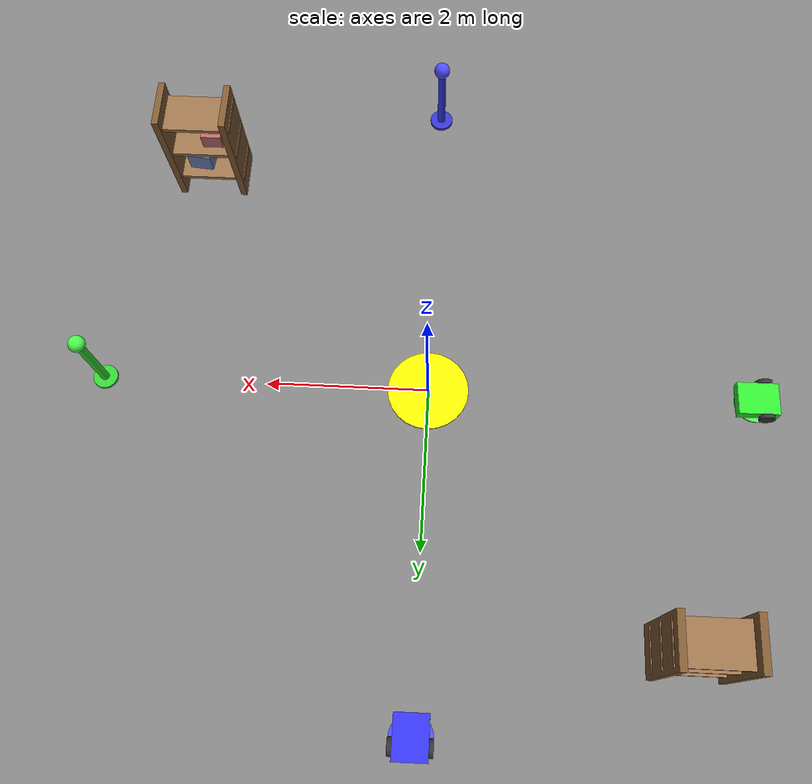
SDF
<?xml version="1.0" ?>
<sdf version="1.8">
  <world name="warehouse_world">

    <!-- PHYSICS CONFIGURATION                                              -->
    <physics name="1ms" type="ignored">
      <max_step_size>0.001</max_step_size>
      <real_time_factor>1.0</real_time_factor>
    </physics>

    <!-- Required Gazebo Plugins -->
    <plugin filename="gz-sim-physics-system" name="gz::sim::systems::Physics"/>
    <plugin filename="gz-sim-scene-broadcaster-system" name="gz::sim::systems::SceneBroadcaster"/>
    <plugin filename="gz-sim-user-commands-system" name="gz::sim::systems::UserCommands"/>

    <!-- LIGHTING                                                           -->
    <light type="directional" name="warehouse_light">
      <cast_shadows>true</cast_shadows>
      <pose>0 0 15 0 0 0</pose>
      <diffuse>0.9 0.9 0.9 1</diffuse>
      <specular>0.3 0.3 0.3 1</specular>
      <attenuation>
        <range>100</range>
        <constant>0.9</constant>
        <linear>0.01</linear>
        <quadratic>0.001</quadratic>
      </attenuation>
      <direction>-0.3 0.2 -0.9</direction>
    </light>

    <light type="directional" name="fill_light">
      <cast_shadows>false</cast_shadows>
      <pose>0 0 10 0 0 0</pose>
      <diffuse>0.4 0.4 0.5 1</diffuse>
      <specular>0.1 0.1 0.1 1</specular>
      <direction>0.5 -0.3 -0.8</direction>
    </light>

    <!-- WAREHOUSE FLOOR                                                    -->
    <model name="warehouse_floor">
      <static>true</static>
      <link name="link">
        <collision name="collision">
          <geometry>
            <plane>
              <normal>0 0 1</normal>
              <size>20 20</size>
            </plane>
          </geometry>
        </collision>
        <visual name="visual">
          <geometry>
            <plane>
              <normal>0 0 1</normal>
              <size>20 20</size>
            </plane>
          </geometry>
          <material>
            <ambient>0.4 0.4 0.4 1</ambient>
            <diffuse>0.5 0.5 0.5 1</diffuse>
            <specular>0.1 0.1 0.1 1</specular>
          </material>
        </visual>
      </link>
    </model>

    <!-- INTERSECTION MARKER (Yellow X at origin)                           -->
    <!-- This marks where the paths cross - the "danger zone" -->

    <model name="intersection_marker">
      <static>true</static>
      <pose>0 0 0.01 0 0 0</pose>
      <link name="link">
        <visual name="circle">
          <geometry>
            <cylinder>
              <radius>0.5</radius>
              <length>0.02</length>
            </cylinder>
          </geometry>
          <material>
            <ambient>0.8 0.8 0.0 1</ambient>
            <diffuse>1.0 1.0 0.0 1</diffuse>
          </material>
        </visual>
      </link>
    </model>

    <!-- STORAGE RACK 1 (Upper Left - out of the way)                       -->
    <model name="storage_rack_1">
      <static>true</static>
      <pose>-3 3 0 0 0 0</pose>

      <link name="rack_body">
        <visual name="left_support">
          <pose>-0.4 0 0.75 0 0 0</pose>
          <geometry><box><size>0.08 0.6 1.5</size></box></geometry>
          <material><ambient>0.3 0.2 0.1 1</ambient><diffuse>0.5 0.35 0.2 1</diffuse></material>
        </visual>
        <collision name="left_support_col">
          <pose>-0.4 0 0.75 0 0 0</pose>
          <geometry><box><size>0.08 0.6 1.5</size></box></geometry>
        </collision>

        <visual name="right_support">
          <pose>0.4 0 0.75 0 0 0</pose>
          <geometry><box><size>0.08 0.6 1.5</size></box></geometry>
          <material><ambient>0.3 0.2 0.1 1</ambient><diffuse>0.5 0.35 0.2 1</diffuse></material>
        </visual>
        <collision name="right_support_col">
          <pose>0.4 0 0.75 0 0 0</pose>
          <geometry><box><size>0.08 0.6 1.5</size></box></geometry>
        </collision>

        <visual name="bottom_shelf">
          <pose>0 0 0.3 0 0 0</pose>
          <geometry><box><size>0.9 0.5 0.05</size></box></geometry>
          <material><ambient>0.4 0.3 0.2 1</ambient><diffuse>0.6 0.45 0.3 1</diffuse></material>
        </visual>

        <visual name="middle_shelf">
          <pose>0 0 0.8 0 0 0</pose>
          <geometry><box><size>0.9 0.5 0.05</size></box></geometry>
          <material><ambient>0.4 0.3 0.2 1</ambient><diffuse>0.6 0.45 0.3 1</diffuse></material>
        </visual>

        <visual name="top_shelf">
          <pose>0 0 1.3 0 0 0</pose>
          <geometry><box><size>0.9 0.5 0.05</size></box></geometry>
          <material><ambient>0.4 0.3 0.2 1</ambient><diffuse>0.6 0.45 0.3 1</diffuse></material>
        </visual>

        <visual name="box1">
          <pose>-0.15 0 0.45 0 0 0</pose>
          <geometry><box><size>0.25 0.3 0.25</size></box></geometry>
          <material><ambient>0.6 0.4 0.2 1</ambient><diffuse>0.8 0.6 0.4 1</diffuse></material>
        </visual>

        <visual name="box2">
          <pose>0.2 0 0.95 0 0 0.1</pose>
          <geometry><box><size>0.2 0.25 0.2</size></box></geometry>
          <material><ambient>0.5 0.3 0.1 1</ambient><diffuse>0.7 0.5 0.3 1</diffuse></material>
        </visual>
      </link>
    </model>

    <!-- STORAGE RACK 2 (Lower Right - out of the way)                      -->
    <model name="storage_rack_2">
      <static>true</static>
      <pose>3 -3 0 0 0 0</pose>

      <link name="rack_body">
        <visual name="left_support">
          <pose>-0.4 0 0.75 0 0 0</pose>
          <geometry><box><size>0.08 0.6 1.5</size></box></geometry>
          <material><ambient>0.3 0.2 0.1 1</ambient><diffuse>0.5 0.35 0.2 1</diffuse></material>
        </visual>
        <collision name="left_support_col">
          <pose>-0.4 0 0.75 0 0 0</pose>
          <geometry><box><size>0.08 0.6 1.5</size></box></geometry>
        </collision>

        <visual name="right_support">
          <pose>0.4 0 0.75 0 0 0</pose>
          <geometry><box><size>0.08 0.6 1.5</size></box></geometry>
          <material><ambient>0.3 0.2 0.1 1</ambient><diffuse>0.5 0.35 0.2 1</diffuse></material>
        </visual>
        <collision name="right_support_col">
          <pose>0.4 0 0.75 0 0 0</pose>
          <geometry><box><size>0.08 0.6 1.5</size></box></geometry>
        </collision>

        <visual name="bottom_shelf">
          <pose>0 0 0.3 0 0 0</pose>
          <geometry><box><size>0.9 0.5 0.05</size></box></geometry>
          <material><ambient>0.4 0.3 0.2 1</ambient><diffuse>0.6 0.45 0.3 1</diffuse></material>
        </visual>

        <visual name="middle_shelf">
          <pose>0 0 0.8 0 0 0</pose>
          <geometry><box><size>0.9 0.5 0.05</size></box></geometry>
          <material><ambient>0.4 0.3 0.2 1</ambient><diffuse>0.6 0.45 0.3 1</diffuse></material>
        </visual>

        <visual name="top_shelf">
          <pose>0 0 1.3 0 0 0</pose>
          <geometry><box><size>0.9 0.5 0.05</size></box></geometry>
          <material><ambient>0.4 0.3 0.2 1</ambient><diffuse>0.6 0.45 0.3 1</diffuse></material>
        </visual>

        <visual name="box1">
          <pose>0.1 0 0.45 0 0 -0.1</pose>
          <geometry><box><size>0.3 0.25 0.25</size></box></geometry>
          <material><ambient>0.2 0.3 0.5 1</ambient><diffuse>0.4 0.5 0.7 1</diffuse></material>
        </visual>

        <visual name="box2">
          <pose>-0.15 0 0.95 0 0 0</pose>
          <geometry><box><size>0.25 0.3 0.2</size></box></geometry>
          <material><ambient>0.5 0.2 0.2 1</ambient><diffuse>0.7 0.4 0.4 1</diffuse></material>
        </visual>
      </link>
    </model>

    <!-- ROBOT 1: BLUE - START MARKER (Small blue cylinder at start)        -->
    <model name="blue_start_marker">
      <static>true</static>
      <pose>0 4 0 0 0 0</pose>
      <link name="link">
        <visual name="base">
          <pose>0 0 0.02 0 0 0</pose>
          <geometry>
            <cylinder>
              <radius>0.2</radius>
              <length>0.04</length>
            </cylinder>
          </geometry>
          <material>
            <ambient>0.0 0.0 0.5 1</ambient>
            <diffuse>0.1 0.1 0.7 1</diffuse>
          </material>
        </visual>
        <visual name="ring">
          <pose>0 0 0.05 0 0 0</pose>
          <geometry>
            <cylinder>
              <radius>0.25</radius>
              <length>0.02</length>
            </cylinder>
          </geometry>
          <material>
            <ambient>0.2 0.2 0.8 1</ambient>
            <diffuse>0.3 0.3 0.9 1</diffuse>
          </material>
        </visual>
      </link>
    </model>

    <!-- ROBOT 1: BLUE - GOAL MARKER (Tall blue pole at goal)               -->
    <model name="blue_goal_marker">
      <static>true</static>
      <pose>0 -4 0 0 0 0</pose>
      <link name="pole">
        <visual name="base">
          <pose>0 0 0.02 0 0 0</pose>
          <geometry>
            <cylinder>
              <radius>0.15</radius>
              <length>0.04</length>
            </cylinder>
          </geometry>
          <material>
            <ambient>0.1 0.1 0.6 1</ambient>
            <diffuse>0.2 0.2 0.8 1</diffuse>
          </material>
        </visual>
        <visual name="pole">
          <pose>0 0 0.5 0 0 0</pose>
          <geometry>
            <cylinder>
              <radius>0.05</radius>
              <length>1.0</length>
            </cylinder>
          </geometry>
          <material>
            <ambient>0.1 0.1 0.8 1</ambient>
            <diffuse>0.2 0.2 0.9 1</diffuse>
            <specular>0.5 0.5 0.5 1</specular>
          </material>
        </visual>
        <visual name="top_sphere">
          <pose>0 0 1.05 0 0 0</pose>
          <geometry>
            <sphere><radius>0.1</radius></sphere>
          </geometry>
          <material>
            <ambient>0.2 0.2 1.0 1</ambient>
            <diffuse>0.3 0.3 1.0 1</diffuse>
            <specular>0.8 0.8 0.8 1</specular>
          </material>
        </visual>
      </link>
    </model>

    <!-- ROBOT 2: GREEN - START MARKER (Small green cylinder at start)      -->
    <model name="green_start_marker">
      <static>true</static>
      <pose>-4 0 0 0 0 0</pose>
      <link name="link">
        <visual name="base">
          <pose>0 0 0.02 0 0 0</pose>
          <geometry>
            <cylinder>
              <radius>0.2</radius>
              <length>0.04</length>
            </cylinder>
          </geometry>
          <material>
            <ambient>0.0 0.5 0.0 1</ambient>
            <diffuse>0.1 0.7 0.1 1</diffuse>
          </material>
        </visual>
        <visual name="ring">
          <pose>0 0 0.05 0 0 0</pose>
          <geometry>
            <cylinder>
              <radius>0.25</radius>
              <length>0.02</length>
            </cylinder>
          </geometry>
          <material>
            <ambient>0.2 0.8 0.2 1</ambient>
            <diffuse>0.3 0.9 0.3 1</diffuse>
          </material>
        </visual>
      </link>
    </model>

    <!-- ROBOT 2: GREEN - GOAL MARKER (Tall green pole at goal)             -->
    <model name="green_goal_marker">
      <static>true</static>
      <pose>4 0 0 0 0 0</pose>
      <link name="pole">
        <visual name="base">
          <pose>0 0 0.02 0 0 0</pose>
          <geometry>
            <cylinder>
              <radius>0.15</radius>
              <length>0.04</length>
            </cylinder>
          </geometry>
          <material>
            <ambient>0.1 0.6 0.1 1</ambient>
            <diffuse>0.2 0.8 0.2 1</diffuse>
          </material>
        </visual>
        <visual name="pole">
          <pose>0 0 0.5 0 0 0</pose>
          <geometry>
            <cylinder>
              <radius>0.05</radius>
              <length>1.0</length>
            </cylinder>
          </geometry>
          <material>
            <ambient>0.1 0.8 0.1 1</ambient>
            <diffuse>0.2 0.9 0.2 1</diffuse>
            <specular>0.5 0.5 0.5 1</specular>
          </material>
        </visual>
        <visual name="top_sphere">
          <pose>0 0 1.05 0 0 0</pose>
          <geometry>
            <sphere><radius>0.1</radius></sphere>
          </geometry>
          <material>
            <ambient>0.2 1.0 0.2 1</ambient>
            <diffuse>0.3 1.0 0.3 1</diffuse>
            <specular>0.8 0.8 0.8 1</specular>
          </material>
        </visual>
      </link>
    </model>

    <!--              ROBOT 1: BLUE (Starts at Top, Goes Down)              -->
    <!--
    Blue robot starts at (0, 4) and travels SOUTH to (0, -4).
    This is a straight vertical path through the center of the warehouse.
    The path crosses the green robot's path at the origin.
    -->

    <model name="turtlebot1">
      <pose>0 4 0.1 0 0 -1.5708</pose>  <!-- Facing SOUTH (negative Y) -->

      <!-- Chassis - BLUE -->
      <link name="chassis">
        <pose>0 0 0.05 0 0 0</pose>
        <inertial>
          <mass>5.0</mass>
          <inertia>
            <ixx>0.05</ixx><ixy>0</ixy><ixz>0</ixz>
            <iyy>0.1</iyy><iyz>0</iyz><izz>0.1</izz>
          </inertia>
        </inertial>
        <collision name="collision">
          <geometry><box><size>0.5 0.4 0.15</size></box></geometry>
        </collision>
        <visual name="visual">
          <geometry><box><size>0.5 0.4 0.15</size></box></geometry>
          <material>
            <ambient>0.1 0.1 0.8 1</ambient>
            <diffuse>0.2 0.2 0.9 1</diffuse>
            <specular>0.3 0.3 0.3 1</specular>
          </material>
        </visual>
      </link>

      <!-- Left Wheel -->
      <link name="left_wheel">
        <pose>-0.1 0.225 0.05 -1.5707 0 0</pose>
        <inertial>
          <mass>0.5</mass>
          <inertia>
            <ixx>0.001</ixx><ixy>0</ixy><ixz>0</ixz>
            <iyy>0.001</iyy><iyz>0</iyz><izz>0.002</izz>
          </inertia>
        </inertial>
        <collision name="collision">
          <geometry><cylinder><radius>0.1</radius><length>0.05</length></cylinder></geometry>
          <surface><friction><ode><mu>1.0</mu><mu2>1.0</mu2></ode></friction></surface>
        </collision>
        <visual name="visual">
          <geometry><cylinder><radius>0.1</radius><length>0.05</length></cylinder></geometry>
          <material><ambient>0.1 0.1 0.1 1</ambient><diffuse>0.2 0.2 0.2 1</diffuse></material>
        </visual>
      </link>

      <!-- Right Wheel -->
      <link name="right_wheel">
        <pose>-0.1 -0.225 0.05 -1.5707 0 0</pose>
        <inertial>
          <mass>0.5</mass>
          <inertia>
            <ixx>0.001</ixx><ixy>0</ixy><ixz>0</ixz>
            <iyy>0.001</iyy><iyz>0</iyz><izz>0.002</izz>
          </inertia>
        </inertial>
        <collision name="collision">
          <geometry><cylinder><radius>0.1</radius><length>0.05</length></cylinder></geometry>
          <surface><friction><ode><mu>1.0</mu><mu2>1.0</mu2></ode></friction></surface>
        </collision>
        <visual name="visual">
          <geometry><cylinder><radius>0.1</radius><length>0.05</length></cylinder></geometry>
          <material><ambient>0.1 0.1 0.1 1</ambient><diffuse>0.2 0.2 0.2 1</diffuse></material>
        </visual>
      </link>

      <!-- Caster -->
      <link name="caster">
        <pose>0.2 0 0.025 0 0 0</pose>
        <inertial>
          <mass>0.2</mass>
          <inertia>
            <ixx>0.00004</ixx><ixy>0</ixy><ixz>0</ixz>
            <iyy>0.00004</iyy><iyz>0</iyz><izz>0.00004</izz>
          </inertia>
        </inertial>
        <collision name="collision">
          <geometry><sphere><radius>0.025</radius></sphere></geometry>
          <surface><friction><ode><mu>0.01</mu><mu2>0.01</mu2></ode></friction></surface>
        </collision>
        <visual name="visual">
          <geometry><sphere><radius>0.025</radius></sphere></geometry>
          <material><ambient>0.3 0.3 0.3 1</ambient><diffuse>0.4 0.4 0.4 1</diffuse></material>
        </visual>
      </link>

      <!-- Joints -->
      <joint name="left_wheel_joint" type="revolute">
        <parent>chassis</parent>
        <child>left_wheel</child>
        <axis><xyz>0 0 1</xyz><limit><lower>-1.79769e+308</lower><upper>1.79769e+308</upper></limit></axis>
      </joint>

      <joint name="right_wheel_joint" type="revolute">
        <parent>chassis</parent>
        <child>right_wheel</child>
        <axis><xyz>0 0 1</xyz><limit><lower>-1.79769e+308</lower><upper>1.79769e+308</upper></limit></axis>
      </joint>

      <joint name="caster_joint" type="ball">
        <parent>chassis</parent>
        <child>caster</child>
      </joint>

      <!-- Differential Drive Plugin -->
      <plugin filename="gz-sim-diff-drive-system" name="gz::sim::systems::DiffDrive">
        <left_joint>left_wheel_joint</left_joint>
        <right_joint>right_wheel_joint</right_joint>
        <wheel_separation>0.45</wheel_separation>
        <wheel_radius>0.1</wheel_radius>
        <max_linear_acceleration>2.0</max_linear_acceleration>
        <max_angular_acceleration>3.0</max_angular_acceleration>
        <topic>/model/turtlebot1/cmd_vel</topic>
        <odom_topic>/model/turtlebot1/odometry</odom_topic>
        <tf_topic>/model/turtlebot1/tf</tf_topic>
        <frame_id>odom</frame_id>
        <child_frame_id>turtlebot1/chassis</child_frame_id>
        <odom_publish_frequency>50</odom_publish_frequency>
      </plugin>

    </model>

    <!--            ROBOT 2: GREEN (Starts at Left, Goes Right)             -->

    <model name="turtlebot2">
      <pose>-4 0 0.1 0 0 0</pose>  <!-- Facing EAST (positive X) -->

      <!-- Chassis - GREEN -->
      <link name="chassis">
        <pose>0 0 0.05 0 0 0</pose>
        <inertial>
          <mass>5.0</mass>
          <inertia>
            <ixx>0.05</ixx><ixy>0</ixy><ixz>0</ixz>
            <iyy>0.1</iyy><iyz>0</iyz><izz>0.1</izz>
          </inertia>
        </inertial>
        <collision name="collision">
          <geometry><box><size>0.5 0.4 0.15</size></box></geometry>
        </collision>
        <visual name="visual">
          <geometry><box><size>0.5 0.4 0.15</size></box></geometry>
          <material>
            <ambient>0.1 0.8 0.1 1</ambient>
            <diffuse>0.2 0.9 0.2 1</diffuse>
            <specular>0.3 0.3 0.3 1</specular>
          </material>
        </visual>
      </link>

      <!-- Left Wheel -->
      <link name="left_wheel">
        <pose>-0.1 0.225 0.05 -1.5707 0 0</pose>
        <inertial>
          <mass>0.5</mass>
          <inertia>
            <ixx>0.001</ixx><ixy>0</ixy><ixz>0</ixz>
            <iyy>0.001</iyy><iyz>0</iyz><izz>0.002</izz>
          </inertia>
        </inertial>
        <collision name="collision">
          <geometry><cylinder><radius>0.1</radius><length>0.05</length></cylinder></geometry>
          <surface><friction><ode><mu>1.0</mu><mu2>1.0</mu2></ode></friction></surface>
        </collision>
        <visual name="visual">
          <geometry><cylinder><radius>0.1</radius><length>0.05</length></cylinder></geometry>
          <material><ambient>0.1 0.1 0.1 1</ambient><diffuse>0.2 0.2 0.2 1</diffuse></material>
        </visual>
      </link>

      <!-- Right Wheel -->
      <link name="right_wheel">
        <pose>-0.1 -0.225 0.05 -1.5707 0 0</pose>
        <inertial>
          <mass>0.5</mass>
          <inertia>
            <ixx>0.001</ixx><ixy>0</ixy><ixz>0</ixz>
            <iyy>0.001</iyy><iyz>0</iyz><izz>0.002</izz>
          </inertia>
        </inertial>
        <collision name="collision">
          <geometry><cylinder><radius>0.1</radius><length>0.05</length></cylinder></geometry>
          <surface><friction><ode><mu>1.0</mu><mu2>1.0</mu2></ode></friction></surface>
        </collision>
        <visual name="visual">
          <geometry><cylinder><radius>0.1</radius><length>0.05</length></cylinder></geometry>
          <material><ambient>0.1 0.1 0.1 1</ambient><diffuse>0.2 0.2 0.2 1</diffuse></material>
        </visual>
      </link>

      <!-- Caster -->
      <link name="caster">
        <pose>0.2 0 0.025 0 0 0</pose>
        <inertial>
          <mass>0.2</mass>
          <inertia>
            <ixx>0.00004</ixx><ixy>0</ixy><ixz>0</ixz>
            <iyy>0.00004</iyy><iyz>0</iyz><izz>0.00004</izz>
          </inertia>
        </inertial>
        <collision name="collision">
          <geometry><sphere><radius>0.025</radius></sphere></geometry>
          <surface><friction><ode><mu>0.01</mu><mu2>0.01</mu2></ode></friction></surface>
        </collision>
        <visual name="visual">
          <geometry><sphere><radius>0.025</radius></sphere></geometry>
          <material><ambient>0.3 0.3 0.3 1</ambient><diffuse>0.4 0.4 0.4 1</diffuse></material>
        </visual>
      </link>

      <!-- Joints -->
      <joint name="left_wheel_joint" type="revolute">
        <parent>chassis</parent>
        <child>left_wheel</child>
        <axis><xyz>0 0 1</xyz><limit><lower>-1.79769e+308</lower><upper>1.79769e+308</upper></limit></axis>
      </joint>

      <joint name="right_wheel_joint" type="revolute">
        <parent>chassis</parent>
        <child>right_wheel</child>
        <axis><xyz>0 0 1</xyz><limit><lower>-1.79769e+308</lower><upper>1.79769e+308</upper></limit></axis>
      </joint>

      <joint name="caster_joint" type="ball">
        <parent>chassis</parent>
        <child>caster</child>
      </joint>

      <!-- Differential Drive Plugin -->
      <plugin filename="gz-sim-diff-drive-system" name="gz::sim::systems::DiffDrive">
        <left_joint>left_wheel_joint</left_joint>
        <right_joint>right_wheel_joint</right_joint>
        <wheel_separation>0.45</wheel_separation>
        <wheel_radius>0.1</wheel_radius>
        <max_linear_acceleration>2.0</max_linear_acceleration>
        <max_angular_acceleration>3.0</max_angular_acceleration>
        <topic>/model/turtlebot2/cmd_vel</topic>
        <odom_topic>/model/turtlebot2/odometry</odom_topic>
        <tf_topic>/model/turtlebot2/tf</tf_topic>
        <frame_id>odom</frame_id>
        <child_frame_id>turtlebot2/chassis</child_frame_id>
        <odom_publish_frequency>50</odom_publish_frequency>
      </plugin>

    </model>

  </world>
</sdf>
